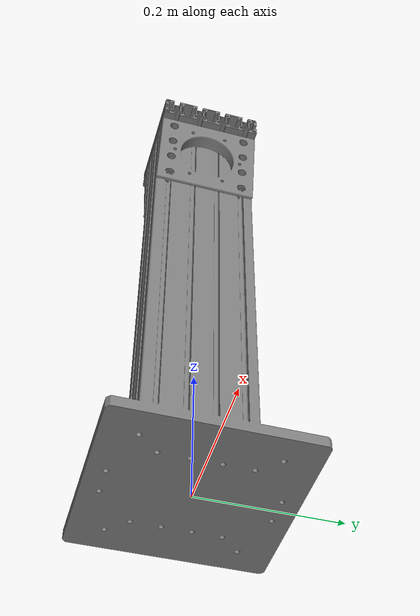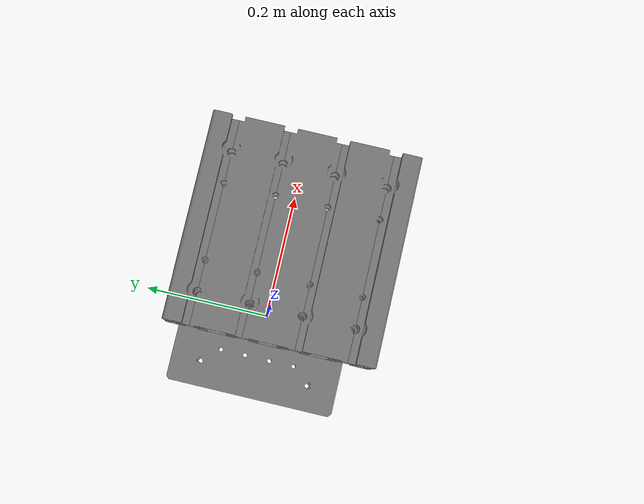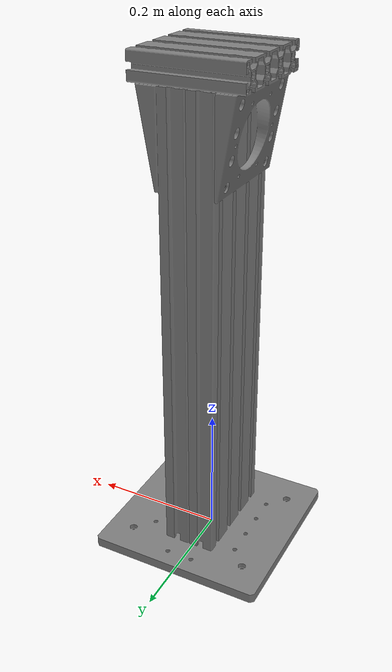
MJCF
<mujoco model="robot_torso">
  <compiler meshdir="assets"/>
  <default>
    <default class="visual">
      <geom group="2" type="mesh" contype="0" conaffinity="0"/>
    </default>
    <default class="collision">
      <geom group="3" type="mesh"/>
    </default>
  </default>
  <asset>
    <mesh file="robot_torso.obj"/>
    <mesh file="robot_torso_collision_0.obj"/>
    <mesh file="robot_torso_collision_1.obj"/>
    <mesh file="robot_torso_collision_2.obj"/>
    <mesh file="robot_torso_collision_3.obj"/>
    <mesh file="robot_torso_collision_4.obj"/>
    <mesh file="robot_torso_collision_5.obj"/>
    <mesh file="robot_torso_collision_6.obj"/>
    <mesh file="robot_torso_collision_7.obj"/>
    <mesh file="robot_torso_collision_8.obj"/>
    <mesh file="robot_torso_collision_9.obj"/>
    <mesh file="robot_torso_collision_10.obj"/>
    <mesh file="robot_torso_collision_11.obj"/>
    <mesh file="robot_torso_collision_12.obj"/>
  </asset>
  <worldbody>
    <body name="robot_torso">
      <geom mesh="robot_torso" class="visual"/>
      <geom mesh="robot_torso_collision_0" rgba="0.8103332942861998 0.7481487387682506 0.8892550295065081 1" class="collision"/>
      <geom mesh="robot_torso_collision_1" rgba="0.42501763116778013 0.9927101710382816 0.6068340743022467 1" class="collision"/>
      <geom mesh="robot_torso_collision_2" rgba="0.05180378066866642 0.6382212889967489 0.2816548239377977 1" class="collision"/>
      <geom mesh="robot_torso_collision_3" rgba="0.29538159865575575 0.5280771911740632 0.035624837349799265 1" class="collision"/>
      <geom mesh="robot_torso_collision_4" rgba="0.41873327459518805 0.17602990595939094 0.9935237827752832 1" class="collision"/>
      <geom mesh="robot_torso_collision_5" rgba="0.17976283839746876 0.906532457216316 0.07826303234573417 1" class="collision"/>
      <geom mesh="robot_torso_collision_6" rgba="0.4150315528439791 0.7167348131233686 0.18585097634253822 1" class="collision"/>
      <geom mesh="robot_torso_collision_7" rgba="0.3688237486102901 0.6435851892788423 0.8153547383966251 1" class="collision"/>
      <geom mesh="robot_torso_collision_8" rgba="0.7628565684050346 0.817607909182518 0.8673471919797455 1" class="collision"/>
      <geom mesh="robot_torso_collision_9" rgba="0.5863673121198987 0.06705724673963354 0.0518192476862277 1" class="collision"/>
      <geom mesh="robot_torso_collision_10" rgba="0.8581215979610125 0.6496501116041294 0.9332185652394698 1" class="collision"/>
      <geom mesh="robot_torso_collision_11" rgba="0.5619554818170358 0.8115604942794454 0.37711905168900417 1" class="collision"/>
      <geom mesh="robot_torso_collision_12" rgba="0.5819459390784728 0.3821724604746257 0.8825198359571682 1" class="collision"/>
    </body>
  </worldbody>
</mujoco>
